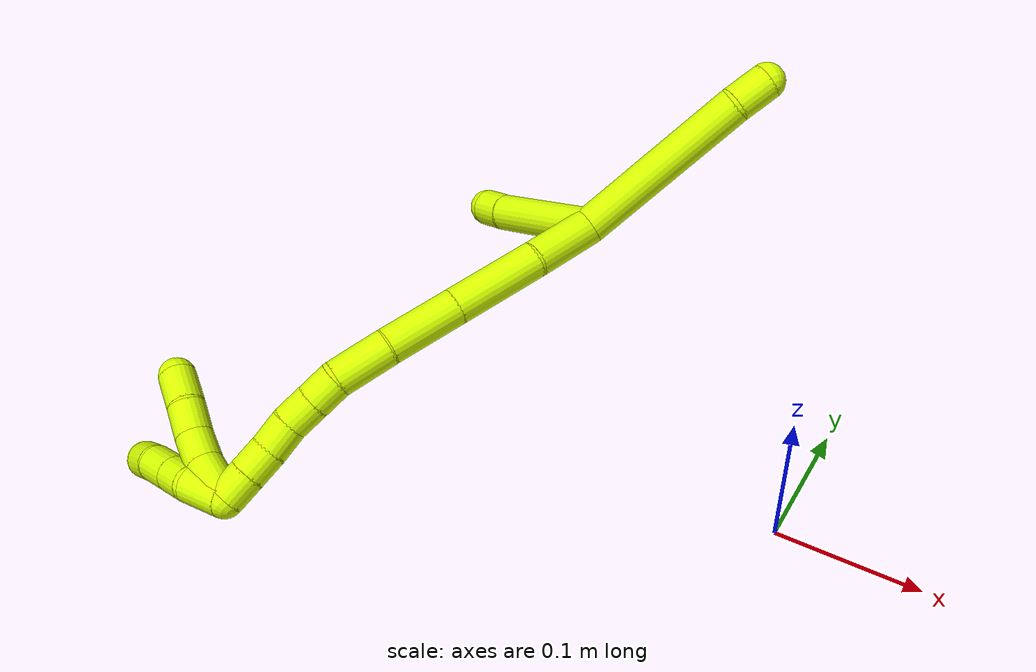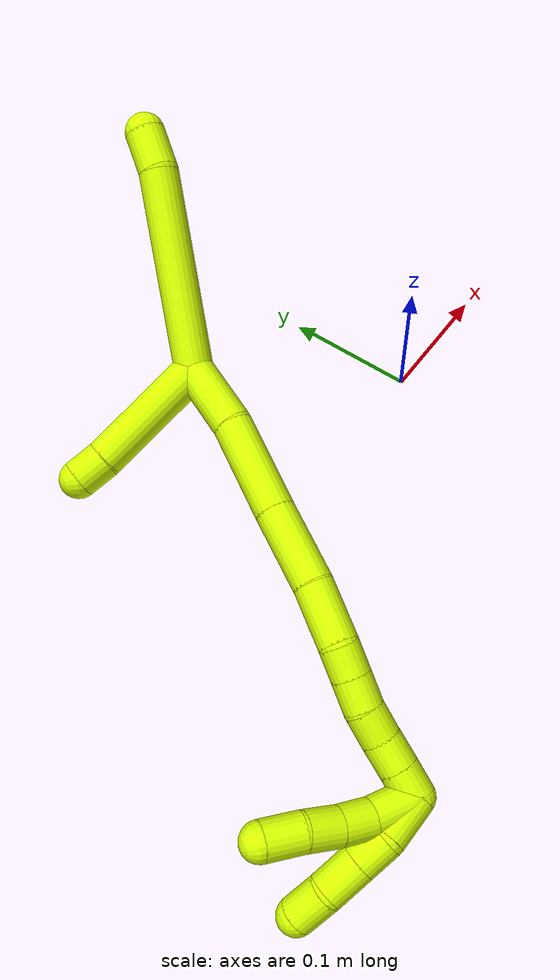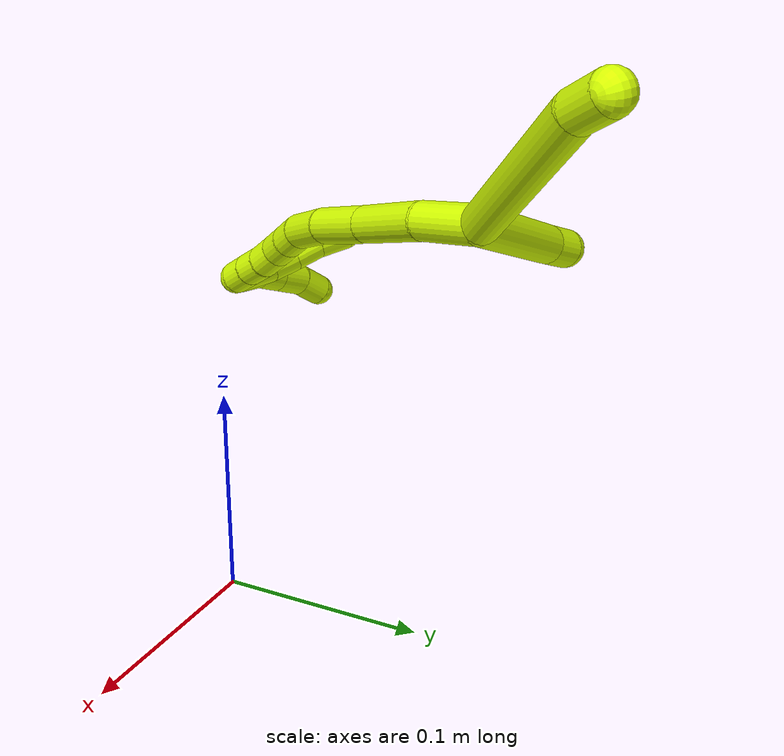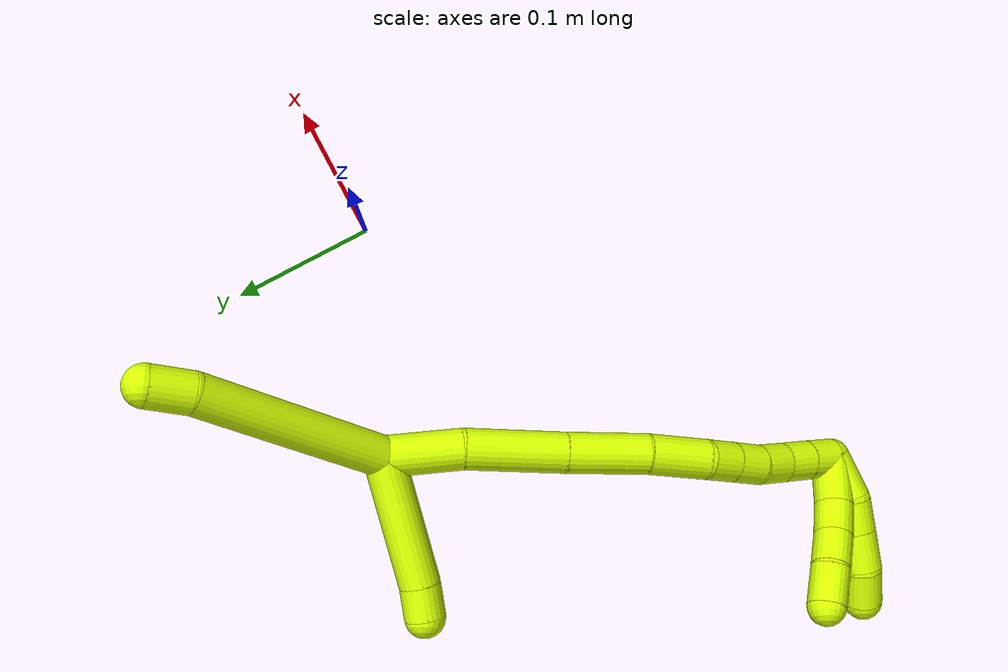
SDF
<sdf version="1.7">
 <world name="default">
  <model name="15">
   <static>0</static>
   <link name="15">
    <collision name="collision-cylinder-e_1_2_8">
     <pose>0.05436 0.029328 -0.005749 -1.76437 1.06812 -1.24616</pose>
     <geometry><cylinder><radius>0.0125</radius><length>0.124068</length></cylinder></geometry>
     <surface>
      <friction><ode><mu>1.16</mu><mu2>1.16</mu2><slip1>0</slip1><slip2>0</slip2></ode></friction>
      <contact><ode><kp>1e+06</kp><kd>1</kd><max_vel>0</max_vel><min_depth>0.001</min_depth></ode></contact>
     </surface>
    </collision>
    <visual name="visual-cylinder-e_1_2_8">
     <pose>0.05436 0.029328 -0.005749 -1.76437 1.06812 -1.24616</pose>
     <geometry><cylinder><radius>0.0125</radius><length>0.124068</length></cylinder></geometry>
     <material><ambient>0.835294 1 0 1</ambient></material>
    </visual>
    <collision name="collision-cylinder-e_2_8_6">
     <pose>0.118397 0.067286 -0.011452 -1.56536 0.842526 -0.838475</pose>
     <geometry><cylinder><radius>0.0125</radius><length>0.025932</length></cylinder></geometry>
     <surface>
      <friction><ode><mu>1.16</mu><mu2>1.16</mu2><slip1>0</slip1><slip2>0</slip2></ode></friction>
      <contact><ode><kp>1e+06</kp><kd>1</kd><max_vel>0</max_vel><min_depth>0.001</min_depth></ode></contact>
     </surface>
    </collision>
    <visual name="visual-cylinder-e_2_8_6">
     <pose>0.118397 0.067286 -0.011452 -1.56536 0.842526 -0.838475</pose>
     <geometry><cylinder><radius>0.0125</radius><length>0.025932</length></cylinder></geometry>
     <material><ambient>0.835294 1 0 1</ambient></material>
    </visual>
    <collision name="collision-cylinder-e_1_2_9">
     <pose>-0.020605 -0.003261 0.033915 0.095848 -0.543915 -0.026748</pose>
     <geometry><cylinder><radius>0.0125</radius><length>0.079635</length></cylinder></geometry>
     <surface>
      <friction><ode><mu>1.16</mu><mu2>1.16</mu2><slip1>0</slip1><slip2>0</slip2></ode></friction>
      <contact><ode><kp>1e+06</kp><kd>1</kd><max_vel>0</max_vel><min_depth>0.001</min_depth></ode></contact>
     </surface>
    </collision>
    <visual name="visual-cylinder-e_1_2_9">
     <pose>-0.020605 -0.003261 0.033915 0.095848 -0.543915 -0.026748</pose>
     <geometry><cylinder><radius>0.0125</radius><length>0.079635</length></cylinder></geometry>
     <material><ambient>0.835294 1 0 1</ambient></material>
    </visual>
    <collision name="collision-cylinder-e_2_9_5">
     <pose>-0.045924 -0.00639 0.076855 -0.014593 -0.481268 0.003581</pose>
     <geometry><cylinder><radius>0.0125</radius><length>0.020365</length></cylinder></geometry>
     <surface>
      <friction><ode><mu>1.16</mu><mu2>1.16</mu2><slip1>0</slip1><slip2>0</slip2></ode></friction>
      <contact><ode><kp>1e+06</kp><kd>1</kd><max_vel>0</max_vel><min_depth>0.001</min_depth></ode></contact>
     </surface>
    </collision>
    <visual name="visual-cylinder-e_2_9_5">
     <pose>-0.045924 -0.00639 0.076855 -0.014593 -0.481268 0.003581</pose>
     <geometry><cylinder><radius>0.0125</radius><length>0.020365</length></cylinder></geometry>
     <material><ambient>0.835294 1 0 1</ambient></material>
    </visual>
    <collision name="collision-cylinder-e_1_2_10">
     <pose>-0.010967 -0.020501 -0.003494 1.73959 -0.485288 -0.570543</pose>
     <geometry><cylinder><radius>0.0125</radius><length>0.047023</length></cylinder></geometry>
     <surface>
      <friction><ode><mu>1.16</mu><mu2>1.16</mu2><slip1>0</slip1><slip2>0</slip2></ode></friction>
      <contact><ode><kp>1e+06</kp><kd>1</kd><max_vel>0</max_vel><min_depth>0.001</min_depth></ode></contact>
     </surface>
    </collision>
    <visual name="visual-cylinder-e_1_2_10">
     <pose>-0.010967 -0.020501 -0.003494 1.73959 -0.485288 -0.570543</pose>
     <geometry><cylinder><radius>0.0125</radius><length>0.047023</length></cylinder></geometry>
     <material><ambient>0.835294 1 0 1</ambient></material>
    </visual>
    <collision name="collision-cylinder-e_2_10_11">
     <pose>-0.039699 -0.066311 -0.008366 1.62522 -0.611312 -0.643268</pose>
     <geometry><cylinder><radius>0.0125</radius><length>0.061902</length></cylinder></geometry>
     <surface>
      <friction><ode><mu>1.16</mu><mu2>1.16</mu2><slip1>0</slip1><slip2>0</slip2></ode></friction>
      <contact><ode><kp>1e+06</kp><kd>1</kd><max_vel>0</max_vel><min_depth>0.001</min_depth></ode></contact>
     </surface>
    </collision>
    <visual name="visual-cylinder-e_2_10_11">
     <pose>-0.039699 -0.066311 -0.008366 1.62522 -0.611312 -0.643268</pose>
     <geometry><cylinder><radius>0.0125</radius><length>0.061902</length></cylinder></geometry>
     <material><ambient>0.835294 1 0 1</ambient></material>
    </visual>
    <collision name="collision-cylinder-e_3_11_12">
     <pose>-0.071625 -0.11271 -0.011292 1.64402 -0.590073 -0.632107</pose>
     <geometry><cylinder><radius>0.0125</radius><length>0.050904</length></cylinder></geometry>
     <surface>
      <friction><ode><mu>1.16</mu><mu2>1.16</mu2><slip1>0</slip1><slip2>0</slip2></ode></friction>
      <contact><ode><kp>1e+06</kp><kd>1</kd><max_vel>0</max_vel><min_depth>0.001</min_depth></ode></contact>
     </surface>
    </collision>
    <visual name="visual-cylinder-e_3_11_12">
     <pose>-0.071625 -0.11271 -0.011292 1.64402 -0.590073 -0.632107</pose>
     <geometry><cylinder><radius>0.0125</radius><length>0.050904</length></cylinder></geometry>
     <material><ambient>0.835294 1 0 1</ambient></material>
    </visual>
    <collision name="collision-cylinder-e_4_12_13">
     <pose>-0.098025 -0.148453 -0.013127 1.59043 -0.695802 -0.708486</pose>
     <geometry><cylinder><radius>0.0125</radius><length>0.038184</length></cylinder></geometry>
     <surface>
      <friction><ode><mu>1.16</mu><mu2>1.16</mu2><slip1>0</slip1><slip2>0</slip2></ode></friction>
      <contact><ode><kp>1e+06</kp><kd>1</kd><max_vel>0</max_vel><min_depth>0.001</min_depth></ode></contact>
     </surface>
    </collision>
    <visual name="visual-cylinder-e_4_12_13">
     <pose>-0.098025 -0.148453 -0.013127 1.59043 -0.695802 -0.708486</pose>
     <geometry><cylinder><radius>0.0125</radius><length>0.038184</length></cylinder></geometry>
     <material><ambient>0.835294 1 0 1</ambient></material>
    </visual>
    <collision name="collision-cylinder-e_5_13_14">
     <pose>-0.118403 -0.168982 -0.014214 1.70589 -0.941083 -1.05485</pose>
     <geometry><cylinder><radius>0.0125</radius><length>0.020145</length></cylinder></geometry>
     <surface>
      <friction><ode><mu>1.16</mu><mu2>1.16</mu2><slip1>0</slip1><slip2>0</slip2></ode></friction>
      <contact><ode><kp>1e+06</kp><kd>1</kd><max_vel>0</max_vel><min_depth>0.001</min_depth></ode></contact>
     </surface>
    </collision>
    <visual name="visual-cylinder-e_5_13_14">
     <pose>-0.118403 -0.168982 -0.014214 1.70589 -0.941083 -1.05485</pose>
     <geometry><cylinder><radius>0.0125</radius><length>0.020145</length></cylinder></geometry>
     <material><ambient>0.835294 1 0 1</ambient></material>
    </visual>
    <collision name="collision-cylinder-e_6_14_15">
     <pose>-0.134801 -0.180888 -0.015777 1.69697 -0.936358 -1.04198</pose>
     <geometry><cylinder><radius>0.0125</radius><length>0.020506</length></cylinder></geometry>
     <surface>
      <friction><ode><mu>1.16</mu><mu2>1.16</mu2><slip1>0</slip1><slip2>0</slip2></ode></friction>
      <contact><ode><kp>1e+06</kp><kd>1</kd><max_vel>0</max_vel><min_depth>0.001</min_depth></ode></contact>
     </surface>
    </collision>
    <visual name="visual-cylinder-e_6_14_15">
     <pose>-0.134801 -0.180888 -0.015777 1.69697 -0.936358 -1.04198</pose>
     <geometry><cylinder><radius>0.0125</radius><length>0.020506</length></cylinder></geometry>
     <material><ambient>0.835294 1 0 1</ambient></material>
    </visual>
    <collision name="collision-cylinder-e_7_15_16">
     <pose>-0.151493 -0.192492 -0.018988 1.9842 -0.945562 -1.32845</pose>
     <geometry><cylinder><radius>0.0125</radius><length>0.020804</length></cylinder></geometry>
     <surface>
      <friction><ode><mu>1.16</mu><mu2>1.16</mu2><slip1>0</slip1><slip2>0</slip2></ode></friction>
      <contact><ode><kp>1e+06</kp><kd>1</kd><max_vel>0</max_vel><min_depth>0.001</min_depth></ode></contact>
     </surface>
    </collision>
    <visual name="visual-cylinder-e_7_15_16">
     <pose>-0.151493 -0.192492 -0.018988 1.9842 -0.945562 -1.32845</pose>
     <geometry><cylinder><radius>0.0125</radius><length>0.020804</length></cylinder></geometry>
     <material><ambient>0.835294 1 0 1</ambient></material>
    </visual>
    <collision name="collision-cylinder-e_8_16_17">
     <pose>-0.167496 -0.204285 -0.023746 1.92691 -0.851143 -1.15587</pose>
     <geometry><cylinder><radius>0.0125</radius><length>0.020129</length></cylinder></geometry>
     <surface>
      <friction><ode><mu>1.16</mu><mu2>1.16</mu2><slip1>0</slip1><slip2>0</slip2></ode></friction>
      <contact><ode><kp>1e+06</kp><kd>1</kd><max_vel>0</max_vel><min_depth>0.001</min_depth></ode></contact>
     </surface>
    </collision>
    <visual name="visual-cylinder-e_8_16_17">
     <pose>-0.167496 -0.204285 -0.023746 1.92691 -0.851143 -1.15587</pose>
     <geometry><cylinder><radius>0.0125</radius><length>0.020129</length></cylinder></geometry>
     <material><ambient>0.835294 1 0 1</ambient></material>
    </visual>
    <collision name="collision-cylinder-e_9_17_1">
     <pose>-0.182818 -0.216751 -0.028277 1.91176 -0.863261 -1.15579</pose>
     <geometry><cylinder><radius>0.0125</radius><length>0.020404</length></cylinder></geometry>
     <surface>
      <friction><ode><mu>1.16</mu><mu2>1.16</mu2><slip1>0</slip1><slip2>0</slip2></ode></friction>
      <contact><ode><kp>1e+06</kp><kd>1</kd><max_vel>0</max_vel><min_depth>0.001</min_depth></ode></contact>
     </surface>
    </collision>
    <visual name="visual-cylinder-e_9_17_1">
     <pose>-0.182818 -0.216751 -0.028277 1.91176 -0.863261 -1.15579</pose>
     <geometry><cylinder><radius>0.0125</radius><length>0.020404</length></cylinder></geometry>
     <material><ambient>0.835294 1 0 1</ambient></material>
    </visual>
    <collision name="collision-cylinder-e_1_1_18">
     <pose>-0.190846 -0.223378 -0.015105 0.0245 -0.017868 -0.000219</pose>
     <geometry><cylinder><radius>0.0125</radius><length>0.030792</length></cylinder></geometry>
     <surface>
      <friction><ode><mu>1.16</mu><mu2>1.16</mu2><slip1>0</slip1><slip2>0</slip2></ode></friction>
      <contact><ode><kp>1e+06</kp><kd>1</kd><max_vel>0</max_vel><min_depth>0.001</min_depth></ode></contact>
     </surface>
    </collision>
    <visual name="visual-cylinder-e_1_1_18">
     <pose>-0.190846 -0.223378 -0.015105 0.0245 -0.017868 -0.000219</pose>
     <geometry><cylinder><radius>0.0125</radius><length>0.030792</length></cylinder></geometry>
     <material><ambient>0.835294 1 0 1</ambient></material>
    </visual>
    <collision name="collision-cylinder-e_2_18_19">
     <pose>-0.18905 -0.223541 0.010868 -0.020165 0.193227 -0.001954</pose>
     <geometry><cylinder><radius>0.0125</radius><length>0.021573</length></cylinder></geometry>
     <surface>
      <friction><ode><mu>1.16</mu><mu2>1.16</mu2><slip1>0</slip1><slip2>0</slip2></ode></friction>
      <contact><ode><kp>1e+06</kp><kd>1</kd><max_vel>0</max_vel><min_depth>0.001</min_depth></ode></contact>
     </surface>
    </collision>
    <visual name="visual-cylinder-e_2_18_19">
     <pose>-0.18905 -0.223541 0.010868 -0.020165 0.193227 -0.001954</pose>
     <geometry><cylinder><radius>0.0125</radius><length>0.021573</length></cylinder></geometry>
     <material><ambient>0.835294 1 0 1</ambient></material>
    </visual>
    <collision name="collision-cylinder-e_3_19_20">
     <pose>-0.183826 -0.222686 0.032128 -0.060057 0.286623 -0.008669</pose>
     <geometry><cylinder><radius>0.0125</radius><length>0.022302</length></cylinder></geometry>
     <surface>
      <friction><ode><mu>1.16</mu><mu2>1.16</mu2><slip1>0</slip1><slip2>0</slip2></ode></friction>
      <contact><ode><kp>1e+06</kp><kd>1</kd><max_vel>0</max_vel><min_depth>0.001</min_depth></ode></contact>
     </surface>
    </collision>
    <visual name="visual-cylinder-e_3_19_20">
     <pose>-0.183826 -0.222686 0.032128 -0.060057 0.286623 -0.008669</pose>
     <geometry><cylinder><radius>0.0125</radius><length>0.022302</length></cylinder></geometry>
     <material><ambient>0.835294 1 0 1</ambient></material>
    </visual>
    <collision name="collision-cylinder-e_4_20_4">
     <pose>-0.179075 -0.220613 0.055288 -0.114097 0.126593 -0.007239</pose>
     <geometry><cylinder><radius>0.0125</radius><length>0.025333</length></cylinder></geometry>
     <surface>
      <friction><ode><mu>1.16</mu><mu2>1.16</mu2><slip1>0</slip1><slip2>0</slip2></ode></friction>
      <contact><ode><kp>1e+06</kp><kd>1</kd><max_vel>0</max_vel><min_depth>0.001</min_depth></ode></contact>
     </surface>
    </collision>
    <visual name="visual-cylinder-e_4_20_4">
     <pose>-0.179075 -0.220613 0.055288 -0.114097 0.126593 -0.007239</pose>
     <geometry><cylinder><radius>0.0125</radius><length>0.025333</length></cylinder></geometry>
     <material><ambient>0.835294 1 0 1</ambient></material>
    </visual>
    <collision name="collision-cylinder-e_1_1_21">
     <pose>-0.196319 -0.227842 -0.017607 0.359363 -0.395495 -0.072757</pose>
     <geometry><cylinder><radius>0.0125</radius><length>0.029836</length></cylinder></geometry>
     <surface>
      <friction><ode><mu>1.16</mu><mu2>1.16</mu2><slip1>0</slip1><slip2>0</slip2></ode></friction>
      <contact><ode><kp>1e+06</kp><kd>1</kd><max_vel>0</max_vel><min_depth>0.001</min_depth></ode></contact>
     </surface>
    </collision>
    <visual name="visual-cylinder-e_1_1_21">
     <pose>-0.196319 -0.227842 -0.017607 0.359363 -0.395495 -0.072757</pose>
     <geometry><cylinder><radius>0.0125</radius><length>0.029836</length></cylinder></geometry>
     <material><ambient>0.835294 1 0 1</ambient></material>
    </visual>
    <collision name="collision-cylinder-e_2_21_22">
     <pose>-0.20722 -0.23284 0.004387 0.017174 -0.514933 -0.004522</pose>
     <geometry><cylinder><radius>0.0125</radius><length>0.020931</length></cylinder></geometry>
     <surface>
      <friction><ode><mu>1.16</mu><mu2>1.16</mu2><slip1>0</slip1><slip2>0</slip2></ode></friction>
      <contact><ode><kp>1e+06</kp><kd>1</kd><max_vel>0</max_vel><min_depth>0.001</min_depth></ode></contact>
     </surface>
    </collision>
    <visual name="visual-cylinder-e_2_21_22">
     <pose>-0.20722 -0.23284 0.004387 0.017174 -0.514933 -0.004522</pose>
     <geometry><cylinder><radius>0.0125</radius><length>0.020931</length></cylinder></geometry>
     <material><ambient>0.835294 1 0 1</ambient></material>
    </visual>
    <collision name="collision-cylinder-e_3_22_23">
     <pose>-0.218704 -0.233194 0.024617 0.017845 -0.517311 -0.004722</pose>
     <geometry><cylinder><radius>0.0125</radius><length>0.0256</length></cylinder></geometry>
     <surface>
      <friction><ode><mu>1.16</mu><mu2>1.16</mu2><slip1>0</slip1><slip2>0</slip2></ode></friction>
      <contact><ode><kp>1e+06</kp><kd>1</kd><max_vel>0</max_vel><min_depth>0.001</min_depth></ode></contact>
     </surface>
    </collision>
    <visual name="visual-cylinder-e_3_22_23">
     <pose>-0.218704 -0.233194 0.024617 0.017845 -0.517311 -0.004722</pose>
     <geometry><cylinder><radius>0.0125</radius><length>0.0256</length></cylinder></geometry>
     <material><ambient>0.835294 1 0 1</ambient></material>
    </visual>
    <collision name="collision-cylinder-e_4_23_3">
     <pose>-0.23259 -0.231547 0.044637 -0.204606 -0.693698 0.074182</pose>
     <geometry><cylinder><radius>0.0125</radius><length>0.023633</length></cylinder></geometry>
     <surface>
      <friction><ode><mu>1.16</mu><mu2>1.16</mu2><slip1>0</slip1><slip2>0</slip2></ode></friction>
      <contact><ode><kp>1e+06</kp><kd>1</kd><max_vel>0</max_vel><min_depth>0.001</min_depth></ode></contact>
     </surface>
    </collision>
    <visual name="visual-cylinder-e_4_23_3">
     <pose>-0.23259 -0.231547 0.044637 -0.204606 -0.693698 0.074182</pose>
     <geometry><cylinder><radius>0.0125</radius><length>0.023633</length></cylinder></geometry>
     <material><ambient>0.835294 1 0 1</ambient></material>
    </visual>
    <collision name="collision-sphere-3">
     <pose>-0.240145 -0.229701 0.053533 0 -0 0</pose>
     <geometry><sphere><radius>0.0125</radius></sphere></geometry>
     <surface>
      <friction><ode><mu>1.16</mu><mu2>1.16</mu2><slip1>0</slip1><slip2>0</slip2></ode></friction>
      <contact><ode><kp>1e+06</kp><kd>1</kd><max_vel>0</max_vel><min_depth>0.001</min_depth></ode></contact>
     </surface>
    </collision>
    <visual name="visual-sphere-3">
     <pose>-0.240145 -0.229701 0.053533 0 -0 0</pose>
     <geometry><sphere><radius>0.0125</radius></sphere></geometry>
     <material><ambient>0.835294 1 0 1</ambient></material>
    </visual>
    <collision name="collision-sphere-23">
     <pose>-0.225034 -0.233393 0.035741 0 -0 0</pose>
     <geometry><sphere><radius>0.0125</radius></sphere></geometry>
     <surface>
      <friction><ode><mu>1.16</mu><mu2>1.16</mu2><slip1>0</slip1><slip2>0</slip2></ode></friction>
      <contact><ode><kp>1e+06</kp><kd>1</kd><max_vel>0</max_vel><min_depth>0.001</min_depth></ode></contact>
     </surface>
    </collision>
    <visual name="visual-sphere-23">
     <pose>-0.225034 -0.233393 0.035741 0 -0 0</pose>
     <geometry><sphere><radius>0.0125</radius></sphere></geometry>
     <material><ambient>0.835294 1 0 1</ambient></material>
    </visual>
    <collision name="collision-sphere-22">
     <pose>-0.212374 -0.232996 0.013494 0 -0 0</pose>
     <geometry><sphere><radius>0.0125</radius></sphere></geometry>
     <surface>
      <friction><ode><mu>1.16</mu><mu2>1.16</mu2><slip1>0</slip1><slip2>0</slip2></ode></friction>
      <contact><ode><kp>1e+06</kp><kd>1</kd><max_vel>0</max_vel><min_depth>0.001</min_depth></ode></contact>
     </surface>
    </collision>
    <visual name="visual-sphere-22">
     <pose>-0.212374 -0.232996 0.013494 0 -0 0</pose>
     <geometry><sphere><radius>0.0125</radius></sphere></geometry>
     <material><ambient>0.835294 1 0 1</ambient></material>
    </visual>
    <collision name="collision-sphere-21">
     <pose>-0.202066 -0.232683 -0.00472 0 -0 0</pose>
     <geometry><sphere><radius>0.0125</radius></sphere></geometry>
     <surface>
      <friction><ode><mu>1.16</mu><mu2>1.16</mu2><slip1>0</slip1><slip2>0</slip2></ode></friction>
      <contact><ode><kp>1e+06</kp><kd>1</kd><max_vel>0</max_vel><min_depth>0.001</min_depth></ode></contact>
     </surface>
    </collision>
    <visual name="visual-sphere-21">
     <pose>-0.202066 -0.232683 -0.00472 0 -0 0</pose>
     <geometry><sphere><radius>0.0125</radius></sphere></geometry>
     <material><ambient>0.835294 1 0 1</ambient></material>
    </visual>
    <collision name="collision-sphere-4">
     <pose>-0.177475 -0.219183 0.067772 0 -0 0</pose>
     <geometry><sphere><radius>0.0125</radius></sphere></geometry>
     <surface>
      <friction><ode><mu>1.16</mu><mu2>1.16</mu2><slip1>0</slip1><slip2>0</slip2></ode></friction>
      <contact><ode><kp>1e+06</kp><kd>1</kd><max_vel>0</max_vel><min_depth>0.001</min_depth></ode></contact>
     </surface>
    </collision>
    <visual name="visual-sphere-4">
     <pose>-0.177475 -0.219183 0.067772 0 -0 0</pose>
     <geometry><sphere><radius>0.0125</radius></sphere></geometry>
     <material><ambient>0.835294 1 0 1</ambient></material>
    </visual>
    <collision name="collision-sphere-20">
     <pose>-0.180674 -0.222044 0.042804 0 -0 0</pose>
     <geometry><sphere><radius>0.0125</radius></sphere></geometry>
     <surface>
      <friction><ode><mu>1.16</mu><mu2>1.16</mu2><slip1>0</slip1><slip2>0</slip2></ode></friction>
      <contact><ode><kp>1e+06</kp><kd>1</kd><max_vel>0</max_vel><min_depth>0.001</min_depth></ode></contact>
     </surface>
    </collision>
    <visual name="visual-sphere-20">
     <pose>-0.180674 -0.222044 0.042804 0 -0 0</pose>
     <geometry><sphere><radius>0.0125</radius></sphere></geometry>
     <material><ambient>0.835294 1 0 1</ambient></material>
    </visual>
    <collision name="collision-sphere-10">
     <pose>-0.021934 -0.041003 -0.006987 0 -0 0</pose>
     <geometry><sphere><radius>0.0125</radius></sphere></geometry>
     <surface>
      <friction><ode><mu>1.16</mu><mu2>1.16</mu2><slip1>0</slip1><slip2>0</slip2></ode></friction>
      <contact><ode><kp>1e+06</kp><kd>1</kd><max_vel>0</max_vel><min_depth>0.001</min_depth></ode></contact>
     </surface>
    </collision>
    <visual name="visual-sphere-10">
     <pose>-0.021934 -0.041003 -0.006987 0 -0 0</pose>
     <geometry><sphere><radius>0.0125</radius></sphere></geometry>
     <material><ambient>0.835294 1 0 1</ambient></material>
    </visual>
    <collision name="collision-sphere-5">
     <pose>-0.050637 -0.006258 0.08588 0 -0 0</pose>
     <geometry><sphere><radius>0.0125</radius></sphere></geometry>
     <surface>
      <friction><ode><mu>1.16</mu><mu2>1.16</mu2><slip1>0</slip1><slip2>0</slip2></ode></friction>
      <contact><ode><kp>1e+06</kp><kd>1</kd><max_vel>0</max_vel><min_depth>0.001</min_depth></ode></contact>
     </surface>
    </collision>
    <visual name="visual-sphere-5">
     <pose>-0.050637 -0.006258 0.08588 0 -0 0</pose>
     <geometry><sphere><radius>0.0125</radius></sphere></geometry>
     <material><ambient>0.835294 1 0 1</ambient></material>
    </visual>
    <collision name="collision-sphere-6">
     <pose>0.128074 0.075916 -0.011405 0 -0 0</pose>
     <geometry><sphere><radius>0.0125</radius></sphere></geometry>
     <surface>
      <friction><ode><mu>1.16</mu><mu2>1.16</mu2><slip1>0</slip1><slip2>0</slip2></ode></friction>
      <contact><ode><kp>1e+06</kp><kd>1</kd><max_vel>0</max_vel><min_depth>0.001</min_depth></ode></contact>
     </surface>
    </collision>
    <visual name="visual-sphere-6">
     <pose>0.128074 0.075916 -0.011405 0 -0 0</pose>
     <geometry><sphere><radius>0.0125</radius></sphere></geometry>
     <material><ambient>0.835294 1 0 1</ambient></material>
    </visual>
    <collision name="collision-sphere-9">
     <pose>-0.04121 -0.006521 0.06783 0 -0 0</pose>
     <geometry><sphere><radius>0.0125</radius></sphere></geometry>
     <surface>
      <friction><ode><mu>1.16</mu><mu2>1.16</mu2><slip1>0</slip1><slip2>0</slip2></ode></friction>
      <contact><ode><kp>1e+06</kp><kd>1</kd><max_vel>0</max_vel><min_depth>0.001</min_depth></ode></contact>
     </surface>
    </collision>
    <visual name="visual-sphere-9">
     <pose>-0.04121 -0.006521 0.06783 0 -0 0</pose>
     <geometry><sphere><radius>0.0125</radius></sphere></geometry>
     <material><ambient>0.835294 1 0 1</ambient></material>
    </visual>
    <collision name="collision-sphere-2">
     <geometry><sphere><radius>0.0125</radius></sphere></geometry>
     <surface>
      <friction><ode><mu>1.16</mu><mu2>1.16</mu2><slip1>0</slip1><slip2>0</slip2></ode></friction>
      <contact><ode><kp>1e+06</kp><kd>1</kd><max_vel>0</max_vel><min_depth>0.001</min_depth></ode></contact>
     </surface>
    </collision>
    <visual name="visual-sphere-2">
     <geometry><sphere><radius>0.0125</radius></sphere></geometry>
     <material><ambient>0.835294 1 0 1</ambient></material>
    </visual>
    <collision name="collision-sphere-19">
     <pose>-0.186979 -0.223328 0.021451 0 -0 0</pose>
     <geometry><sphere><radius>0.0125</radius></sphere></geometry>
     <surface>
      <friction><ode><mu>1.16</mu><mu2>1.16</mu2><slip1>0</slip1><slip2>0</slip2></ode></friction>
      <contact><ode><kp>1e+06</kp><kd>1</kd><max_vel>0</max_vel><min_depth>0.001</min_depth></ode></contact>
     </surface>
    </collision>
    <visual name="visual-sphere-19">
     <pose>-0.186979 -0.223328 0.021451 0 -0 0</pose>
     <geometry><sphere><radius>0.0125</radius></sphere></geometry>
     <material><ambient>0.835294 1 0 1</ambient></material>
    </visual>
    <collision name="collision-sphere-8">
     <pose>0.108721 0.058656 -0.011499 0 -0 0</pose>
     <geometry><sphere><radius>0.0125</radius></sphere></geometry>
     <surface>
      <friction><ode><mu>1.16</mu><mu2>1.16</mu2><slip1>0</slip1><slip2>0</slip2></ode></friction>
      <contact><ode><kp>1e+06</kp><kd>1</kd><max_vel>0</max_vel><min_depth>0.001</min_depth></ode></contact>
     </surface>
    </collision>
    <visual name="visual-sphere-8">
     <pose>0.108721 0.058656 -0.011499 0 -0 0</pose>
     <geometry><sphere><radius>0.0125</radius></sphere></geometry>
     <material><ambient>0.835294 1 0 1</ambient></material>
    </visual>
    <collision name="collision-sphere-11">
     <pose>-0.057463 -0.091619 -0.009745 0 -0 0</pose>
     <geometry><sphere><radius>0.0125</radius></sphere></geometry>
     <surface>
      <friction><ode><mu>1.16</mu><mu2>1.16</mu2><slip1>0</slip1><slip2>0</slip2></ode></friction>
      <contact><ode><kp>1e+06</kp><kd>1</kd><max_vel>0</max_vel><min_depth>0.001</min_depth></ode></contact>
     </surface>
    </collision>
    <visual name="visual-sphere-11">
     <pose>-0.057463 -0.091619 -0.009745 0 -0 0</pose>
     <geometry><sphere><radius>0.0125</radius></sphere></geometry>
     <material><ambient>0.835294 1 0 1</ambient></material>
    </visual>
    <collision name="collision-sphere-12">
     <pose>-0.085787 -0.133802 -0.012839 0 -0 0</pose>
     <geometry><sphere><radius>0.0125</radius></sphere></geometry>
     <surface>
      <friction><ode><mu>1.16</mu><mu2>1.16</mu2><slip1>0</slip1><slip2>0</slip2></ode></friction>
      <contact><ode><kp>1e+06</kp><kd>1</kd><max_vel>0</max_vel><min_depth>0.001</min_depth></ode></contact>
     </surface>
    </collision>
    <visual name="visual-sphere-12">
     <pose>-0.085787 -0.133802 -0.012839 0 -0 0</pose>
     <geometry><sphere><radius>0.0125</radius></sphere></geometry>
     <material><ambient>0.835294 1 0 1</ambient></material>
    </visual>
    <collision name="collision-sphere-13">
     <pose>-0.110263 -0.163104 -0.013415 0 -0 0</pose>
     <geometry><sphere><radius>0.0125</radius></sphere></geometry>
     <surface>
      <friction><ode><mu>1.16</mu><mu2>1.16</mu2><slip1>0</slip1><slip2>0</slip2></ode></friction>
      <contact><ode><kp>1e+06</kp><kd>1</kd><max_vel>0</max_vel><min_depth>0.001</min_depth></ode></contact>
     </surface>
    </collision>
    <visual name="visual-sphere-13">
     <pose>-0.110263 -0.163104 -0.013415 0 -0 0</pose>
     <geometry><sphere><radius>0.0125</radius></sphere></geometry>
     <material><ambient>0.835294 1 0 1</ambient></material>
    </visual>
    <collision name="collision-sphere-14">
     <pose>-0.126544 -0.174859 -0.015013 0 -0 0</pose>
     <geometry><sphere><radius>0.0125</radius></sphere></geometry>
     <surface>
      <friction><ode><mu>1.16</mu><mu2>1.16</mu2><slip1>0</slip1><slip2>0</slip2></ode></friction>
      <contact><ode><kp>1e+06</kp><kd>1</kd><max_vel>0</max_vel><min_depth>0.001</min_depth></ode></contact>
     </surface>
    </collision>
    <visual name="visual-sphere-14">
     <pose>-0.126544 -0.174859 -0.015013 0 -0 0</pose>
     <geometry><sphere><radius>0.0125</radius></sphere></geometry>
     <material><ambient>0.835294 1 0 1</ambient></material>
    </visual>
    <collision name="collision-sphere-15">
     <pose>-0.143059 -0.186917 -0.016542 0 -0 0</pose>
     <geometry><sphere><radius>0.0125</radius></sphere></geometry>
     <surface>
      <friction><ode><mu>1.16</mu><mu2>1.16</mu2><slip1>0</slip1><slip2>0</slip2></ode></friction>
      <contact><ode><kp>1e+06</kp><kd>1</kd><max_vel>0</max_vel><min_depth>0.001</min_depth></ode></contact>
     </surface>
    </collision>
    <visual name="visual-sphere-15">
     <pose>-0.143059 -0.186917 -0.016542 0 -0 0</pose>
     <geometry><sphere><radius>0.0125</radius></sphere></geometry>
     <material><ambient>0.835294 1 0 1</ambient></material>
    </visual>
    <collision name="collision-sphere-16">
     <pose>-0.159927 -0.198067 -0.021434 0 -0 0</pose>
     <geometry><sphere><radius>0.0125</radius></sphere></geometry>
     <surface>
      <friction><ode><mu>1.16</mu><mu2>1.16</mu2><slip1>0</slip1><slip2>0</slip2></ode></friction>
      <contact><ode><kp>1e+06</kp><kd>1</kd><max_vel>0</max_vel><min_depth>0.001</min_depth></ode></contact>
     </surface>
    </collision>
    <visual name="visual-sphere-16">
     <pose>-0.159927 -0.198067 -0.021434 0 -0 0</pose>
     <geometry><sphere><radius>0.0125</radius></sphere></geometry>
     <material><ambient>0.835294 1 0 1</ambient></material>
    </visual>
    <collision name="collision-sphere-17">
     <pose>-0.175065 -0.210502 -0.026059 0 -0 0</pose>
     <geometry><sphere><radius>0.0125</radius></sphere></geometry>
     <surface>
      <friction><ode><mu>1.16</mu><mu2>1.16</mu2><slip1>0</slip1><slip2>0</slip2></ode></friction>
      <contact><ode><kp>1e+06</kp><kd>1</kd><max_vel>0</max_vel><min_depth>0.001</min_depth></ode></contact>
     </surface>
    </collision>
    <visual name="visual-sphere-17">
     <pose>-0.175065 -0.210502 -0.026059 0 -0 0</pose>
     <geometry><sphere><radius>0.0125</radius></sphere></geometry>
     <material><ambient>0.835294 1 0 1</ambient></material>
    </visual>
    <collision name="collision-sphere-1">
     <pose>-0.190571 -0.223001 -0.030494 0 -0 0</pose>
     <geometry><sphere><radius>0.0125</radius></sphere></geometry>
     <surface>
      <friction><ode><mu>1.16</mu><mu2>1.16</mu2><slip1>0</slip1><slip2>0</slip2></ode></friction>
      <contact><ode><kp>1e+06</kp><kd>1</kd><max_vel>0</max_vel><min_depth>0.001</min_depth></ode></contact>
     </surface>
    </collision>
    <visual name="visual-sphere-1">
     <pose>-0.190571 -0.223001 -0.030494 0 -0 0</pose>
     <geometry><sphere><radius>0.0125</radius></sphere></geometry>
     <material><ambient>0.835294 1 0 1</ambient></material>
    </visual>
    <collision name="collision-sphere-18">
     <pose>-0.191121 -0.223755 0.000284 0 -0 0</pose>
     <geometry><sphere><radius>0.0125</radius></sphere></geometry>
     <surface>
      <friction><ode><mu>1.16</mu><mu2>1.16</mu2><slip1>0</slip1><slip2>0</slip2></ode></friction>
      <contact><ode><kp>1e+06</kp><kd>1</kd><max_vel>0</max_vel><min_depth>0.001</min_depth></ode></contact>
     </surface>
    </collision>
    <visual name="visual-sphere-18">
     <pose>-0.191121 -0.223755 0.000284 0 -0 0</pose>
     <geometry><sphere><radius>0.0125</radius></sphere></geometry>
     <material><ambient>0.835294 1 0 1</ambient></material>
    </visual>
    <inertial>
     <pose>-0.077877 -0.102004 0.003434 0 -0 0</pose>
     <mass>0.75</mass>
     <inertia><ixx>2e-06</ixx><ixy>0</ixy><ixz>0</ixz><iyy>8.9e-05</iyy><iyz>0</iyz><izz>-9.3e-05</izz></inertia>
    </inertial>
   </link>
   <pose>-0.174829 0.058246 0.152325 -1.21792 -1.15136 0.730096</pose>
  </model>
 </world>
</sdf>
